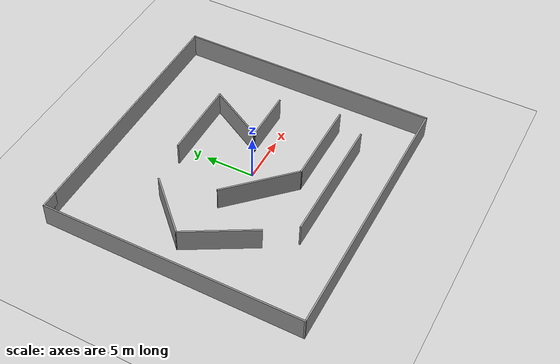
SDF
<?xml version="1.0" ?>
<sdf version="1.6">
  <world name="world">

    <!-- Ground Plane -->
    <model name="ground_plane">
      <static>true</static>
      <link name="ground_link">
        <collision name="ground_collision">
          <geometry>
            <plane>
              <normal>0 0 1</normal>
              <size>100 100</size>
            </plane>
          </geometry>
          <surface>
            <friction>
              <ode>
                <mu>0.6</mu>
                <mu2>0.6</mu2>
              </ode>
            </friction>
          </surface>
        </collision>
        <visual name="ground_visual">
          <geometry>
            <plane>
              <normal>0 0 1</normal>
              <size>100 100</size>
            </plane>
          </geometry>
          <material>
            <ambient>0.8 0.8 0.8 1</ambient>
            <diffuse>0.8 0.8 0.8 1</diffuse>
          </material>
        </visual>
      </link>
    </model>

    <!-- Light Source -->
    <light type="directional" name="sun">
      <cast_shadows>true</cast_shadows>
      <pose>0 0 10 0 0 0</pose>
      <diffuse>0.8 0.8 0.8 1</diffuse>
      <specular>0.2 0.2 0.2 1</specular>
      <direction>-0.5 0.1 -0.9</direction>
    </light>

    <model name='myworld'>
      <pose>-0.601223 0.686936 0 0 -0 0</pose>
      <link name='Wall_0'>
        <collision name='Wall_0_Collision'>
          <geometry>
            <box>
              <size>13.25 0.15 2.5</size>
            </box>
          </geometry>
          <pose>0 0 1.25 0 -0 0</pose>
        </collision>
        <visual name='Wall_0_Visual'>
          <pose>0 0 1.25 0 -0 0</pose>
          <geometry>
            <box>
              <size>13.25 0.15 2.5</size>
            </box>
          </geometry>
          <material>
            <script>
              <uri>file://media/materials/scripts/gazebo.material</uri>
              <name>Gazebo/Grey</name>
            </script>
            <ambient>1 1 1 1</ambient>
          </material>
          <meta>
            <layer>0</layer>
          </meta>
        </visual>
        <pose>1.83772 -8.41599 0 0 -0 3.14159</pose>
      </link>
      <link name='Wall_10'>
        <collision name='Wall_10_Collision'>
          <geometry>
            <box>
              <size>5.5 0.15 2.5</size>
            </box>
          </geometry>
          <pose>0 0 1.25 0 -0 0</pose>
        </collision>
        <visual name='Wall_10_Visual'>
          <pose>0 0 1.25 0 -0 0</pose>
          <geometry>
            <box>
              <size>5.5 0.15 2.5</size>
            </box>
          </geometry>
          <material>
            <script>
              <uri>file://media/materials/scripts/gazebo.material</uri>
              <name>Gazebo/Grey</name>
            </script>
            <ambient>1 1 1 1</ambient>
          </material>
          <meta>
            <layer>0</layer>
          </meta>
        </visual>
        <pose>6.26137 0.680246 0 0 -0 0</pose>
      </link>
      <link name='Wall_2'>
        <collision name='Wall_2_Collision'>
          <geometry>
            <box>
              <size>7.75 0.15 2.5</size>
            </box>
          </geometry>
          <pose>0 0 1.25 0 -0 0</pose>
        </collision>
        <visual name='Wall_2_Visual'>
          <pose>0 0 1.25 0 -0 0</pose>
          <geometry>
            <box>
              <size>7.75 0.15 2.5</size>
            </box>
          </geometry>
          <material>
            <script>
              <uri>file://media/materials/scripts/gazebo.material</uri>
              <name>Gazebo/Grey</name>
            </script>
            <ambient>1 1 1 1</ambient>
          </material>
          <meta>
            <layer>0</layer>
          </meta>
        </visual>
        <pose>-8.61523 -2.24204 0 0 -0 2.0944</pose>
      </link>
      <link name='Wall_28'>
        <collision name='Wall_28_Collision'>
          <geometry>
            <box>
              <size>26.5 0.15 2.5</size>
            </box>
          </geometry>
          <pose>0 0 1.25 0 -0 0</pose>
        </collision>
        <visual name='Wall_28_Visual'>
          <pose>0 0 1.25 0 -0 0</pose>
          <geometry>
            <box>
              <size>26.5 0.15 2.5</size>
            </box>
          </geometry>
          <material>
            <script>
              <uri>file://media/materials/scripts/gazebo.material</uri>
              <name>Gazebo/Grey</name>
            </script>
            <ambient>1 1 1 1</ambient>
          </material>
          <meta>
            <layer>0</layer>
          </meta>
        </visual>
        <pose>0.375 13.175 0 0 -0 0</pose>
      </link>
      <link name='Wall_29'>
        <collision name='Wall_29_Collision'>
          <geometry>
            <box>
              <size>26.5 0.15 2.5</size>
            </box>
          </geometry>
          <pose>0 0 1.25 0 -0 0</pose>
        </collision>
        <visual name='Wall_29_Visual'>
          <pose>0 0 1.25 0 -0 0</pose>
          <geometry>
            <box>
              <size>26.5 0.15 2.5</size>
            </box>
          </geometry>
          <material>
            <script>
              <uri>file://media/materials/scripts/gazebo.material</uri>
              <name>Gazebo/Grey</name>
            </script>
            <ambient>1 1 1 1</ambient>
          </material>
          <meta>
            <layer>0</layer>
          </meta>
        </visual>
        <pose>13.55 -0 0 0 -0 -1.5708</pose>
      </link>
      <link name='Wall_3'>
        <collision name='Wall_3_Collision'>
          <geometry>
            <box>
              <size>6.75 0.15 2.5</size>
            </box>
          </geometry>
          <pose>0 0 1.25 0 -0 0</pose>
        </collision>
        <visual name='Wall_3_Visual'>
          <pose>0 0 1.25 0 -0 0</pose>
          <geometry>
            <box>
              <size>6.75 0.15 2.5</size>
            </box>
          </geometry>
          <material>
            <script>
              <uri>file://media/materials/scripts/gazebo.material</uri>
              <name>Gazebo/Grey</name>
            </script>
            <ambient>1 1 1 1</ambient>
          </material>
          <meta>
            <layer>0</layer>
          </meta>
        </visual>
        <pose>-8.18178 3.38231 0 0 -0 0.785398</pose>
      </link>
      <link name='Wall_30'>
        <collision name='Wall_30_Collision'>
          <geometry>
            <box>
              <size>27.25 0.15 2.5</size>
            </box>
          </geometry>
          <pose>0 0 1.25 0 -0 0</pose>
        </collision>
        <visual name='Wall_30_Visual'>
          <pose>0 0 1.25 0 -0 0</pose>
          <geometry>
            <box>
              <size>27.25 0.15 2.5</size>
            </box>
          </geometry>
          <material>
            <script>
              <uri>file://media/materials/scripts/gazebo.material</uri>
              <name>Gazebo/Grey</name>
            </script>
            <ambient>1 1 1 1</ambient>
          </material>
          <meta>
            <layer>0</layer>
          </meta>
        </visual>
        <pose>0 -13.175 0 0 -0 3.14159</pose>
      </link>
      <link name='Wall_31'>
        <collision name='Wall_31_Collision'>
          <geometry>
            <box>
              <size>26.5 0.15 2.5</size>
            </box>
          </geometry>
          <pose>0 0 1.25 0 -0 0</pose>
        </collision>
        <visual name='Wall_31_Visual'>
          <pose>0 0 1.25 0 -0 0</pose>
          <geometry>
            <box>
              <size>26.5 0.15 2.5</size>
            </box>
          </geometry>
          <material>
            <script>
              <uri>file://media/materials/scripts/gazebo.material</uri>
              <name>Gazebo/Grey</name>
            </script>
            <ambient>1 1 1 1</ambient>
          </material>
          <meta>
            <layer>0</layer>
          </meta>
        </visual>
        <pose>-13.55 -0 0 0 -0 1.5708</pose>
      </link>
      <link name='Wall_32'>
        <collision name='Wall_32_Collision'>
          <geometry>
            <box>
              <size>1.75 0.15 2.5</size>
            </box>
          </geometry>
          <pose>0 0 1.25 0 -0 0</pose>
        </collision>
        <visual name='Wall_32_Visual'>
          <pose>0 0 1.25 0 -0 0</pose>
          <geometry>
            <box>
              <size>1.75 0.15 2.5</size>
            </box>
          </geometry>
          <material>
            <script>
              <uri>file://media/materials/scripts/gazebo.material</uri>
              <name>Gazebo/Grey</name>
            </script>
            <ambient>1 1 1 1</ambient>
          </material>
          <meta>
            <layer>0</layer>
          </meta>
        </visual>
        <pose>-12.75 13.175 0 0 -0 0</pose>
      </link>
      <link name='Wall_5'>
        <collision name='Wall_5_Collision'>
          <geometry>
            <box>
              <size>8.25 0.15 2.5</size>
            </box>
          </geometry>
          <pose>0 0 1.25 0 -0 0</pose>
        </collision>
        <visual name='Wall_5_Visual'>
          <pose>0 0 1.25 0 -0 0</pose>
          <geometry>
            <box>
              <size>8.25 0.15 2.5</size>
            </box>
          </geometry>
          <material>
            <script>
              <uri>file://media/materials/scripts/gazebo.material</uri>
              <name>Gazebo/Grey</name>
            </script>
            <ambient>1 1 1 1</ambient>
          </material>
          <meta>
            <layer>0</layer>
          </meta>
        </visual>
        <pose>-1.55029 -2.63062 0 0 -0 -0.785398</pose>
      </link>
      <link name='Wall_6'>
        <collision name='Wall_6_Collision'>
          <geometry>
            <box>
              <size>8.75 0.15 2.5</size>
            </box>
          </geometry>
          <pose>0 0 1.25 0 -0 0</pose>
        </collision>
        <visual name='Wall_6_Visual'>
          <pose>0 0 1.25 0 -0 0</pose>
          <geometry>
            <box>
              <size>8.75 0.15 2.5</size>
            </box>
          </geometry>
          <material>
            <script>
              <uri>file://media/materials/scripts/gazebo.material</uri>
              <name>Gazebo/Grey</name>
            </script>
            <ambient>1 1 1 1</ambient>
          </material>
          <meta>
            <layer>0</layer>
          </meta>
        </visual>
        <pose>5.61349 -5.4944 0 0 -0 0</pose>
      </link>
      <link name='Wall_8'>
        <collision name='Wall_8_Collision'>
          <geometry>
            <box>
              <size>8.25 0.15 2.5</size>
            </box>
          </geometry>
          <pose>0 0 1.25 0 -0 0</pose>
        </collision>
        <visual name='Wall_8_Visual'>
          <pose>0 0 1.25 0 -0 0</pose>
          <geometry>
            <box>
              <size>8.25 0.15 2.5</size>
            </box>
          </geometry>
          <material>
            <script>
              <uri>file://media/materials/scripts/gazebo.material</uri>
              <name>Gazebo/Grey</name>
            </script>
            <ambient>1 1 1 1</ambient>
          </material>
          <meta>
            <layer>0</layer>
          </meta>
        </visual>
        <pose>2.83637 6.39601 0 0 -0 0</pose>
      </link>
      <link name='Wall_9'>
        <collision name='Wall_9_Collision'>
          <geometry>
            <box>
              <size>6.75 0.15 2.5</size>
            </box>
          </geometry>
          <pose>0 0 1.25 0 -0 0</pose>
        </collision>
        <visual name='Wall_9_Visual'>
          <pose>0 0 1.25 0 -0 0</pose>
          <geometry>
            <box>
              <size>6.75 0.15 2.5</size>
            </box>
          </geometry>
          <material>
            <script>
              <uri>file://media/materials/scripts/gazebo.material</uri>
              <name>Gazebo/Grey</name>
            </script>
            <ambient>1 1 1 1</ambient>
          </material>
          <meta>
            <layer>0</layer>
          </meta>
        </visual>
        <pose>5.23637 3.53813 0 0 -0 -2.0944</pose>
      </link>
      <static>1</static>
    </model>

    <!-- Physics -->
    <physics type="ode">
      <max_step_size>0.001</max_step_size>
      <real_time_factor>1.0</real_time_factor>
      <real_time_update_rate>1000</real_time_update_rate>
    </physics>

    <!-- Scene -->
    <scene>
      <ambient>0.4 0.4 0.4 1</ambient>
      <background>0.7 0.7 0.7 1</background>
      <shadows>true</shadows>
    </scene>

    <!-- Plugins（保留你原来的） -->
    <plugin name="robot_distance_plugin" filename="librobot_distance_plugin.so">
      <ros>
        <namespace>/gazebo</namespace>
      </ros>
    </plugin>

    <plugin name="gazebo_ros_state" filename="libgazebo_ros_state.so">
      <ros>
        <argument>model_states:=model_states</argument>
      </ros>
      <update_rate>10.0</update_rate>
      <publish_odom_tf>false</publish_odom_tf>
    </plugin>

  </world>
</sdf>
